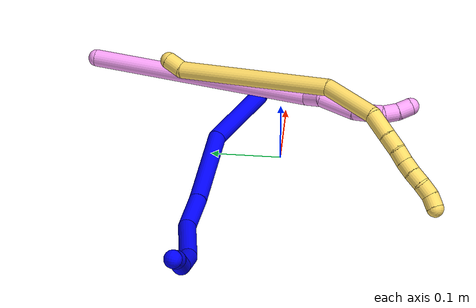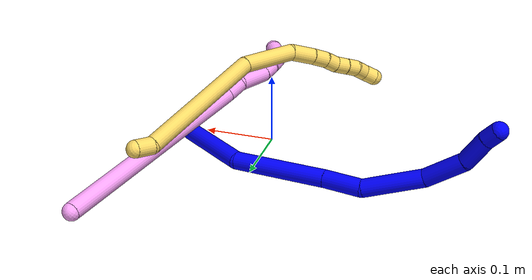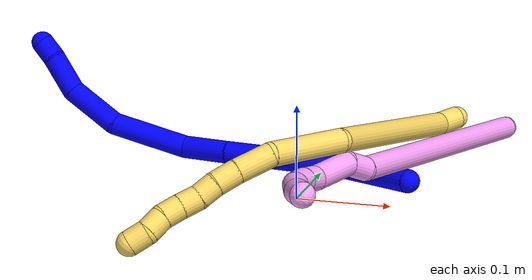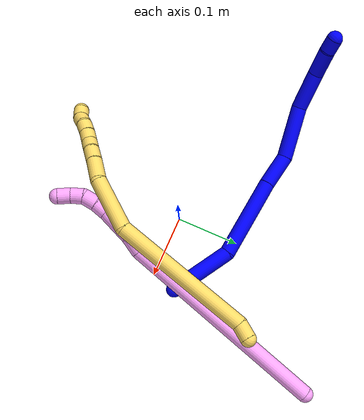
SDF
<sdf version="1.7">
 <world name="default">
  <model name="1">
   <static>0</static>
   <link name="1">
    <collision name="collision-cylinder-e_1_1_4">
     <pose>-0.049438 0.010562 0.009803 -0.82267 -1.28717 0.632482</pose>
     <geometry><cylinder><radius>0.0125</radius><length>0.102991</length></cylinder></geometry>
     <surface>
      <friction><ode><mu>1.16</mu><mu2>1.16</mu2><slip1>0</slip1><slip2>0</slip2></ode></friction>
      <contact><ode><kp>1e+06</kp><kd>1</kd><max_vel>0</max_vel><min_depth>0.001</min_depth></ode></contact>
     </surface>
    </collision>
    <visual name="visual-cylinder-e_1_1_4">
     <pose>-0.049438 0.010562 0.009803 -0.82267 -1.28717 0.632482</pose>
     <geometry><cylinder><radius>0.0125</radius><length>0.102991</length></cylinder></geometry>
     <material><ambient>0 0 1 1</ambient></material>
    </visual>
    <collision name="collision-cylinder-e_2_4_5">
     <pose>-0.16135 0.0333 0.003315 -2.49978 -1.25607 2.28299</pose>
     <geometry><cylinder><radius>0.0125</radius><length>0.131402</length></cylinder></geometry>
     <surface>
      <friction><ode><mu>1.16</mu><mu2>1.16</mu2><slip1>0</slip1><slip2>0</slip2></ode></friction>
      <contact><ode><kp>1e+06</kp><kd>1</kd><max_vel>0</max_vel><min_depth>0.001</min_depth></ode></contact>
     </surface>
    </collision>
    <visual name="visual-cylinder-e_2_4_5">
     <pose>-0.16135 0.0333 0.003315 -2.49978 -1.25607 2.28299</pose>
     <geometry><cylinder><radius>0.0125</radius><length>0.131402</length></cylinder></geometry>
     <material><ambient>0 0 1 1</ambient></material>
    </visual>
    <collision name="collision-cylinder-e_3_5_6">
     <pose>-0.250029 0.050732 -0.0179 -2.32349 -1.30257 2.10738</pose>
     <geometry><cylinder><radius>0.0125</radius><length>0.054354</length></cylinder></geometry>
     <surface>
      <friction><ode><mu>1.16</mu><mu2>1.16</mu2><slip1>0</slip1><slip2>0</slip2></ode></friction>
      <contact><ode><kp>1e+06</kp><kd>1</kd><max_vel>0</max_vel><min_depth>0.001</min_depth></ode></contact>
     </surface>
    </collision>
    <visual name="visual-cylinder-e_3_5_6">
     <pose>-0.250029 0.050732 -0.0179 -2.32349 -1.30257 2.10738</pose>
     <geometry><cylinder><radius>0.0125</radius><length>0.054354</length></cylinder></geometry>
     <material><ambient>0 0 1 1</ambient></material>
    </visual>
    <collision name="collision-cylinder-e_4_6_7">
     <pose>-0.313489 0.052282 -0.04301 2.95998 -1.06726 -2.83575</pose>
     <geometry><cylinder><radius>0.0125</radius><length>0.085068</length></cylinder></geometry>
     <surface>
      <friction><ode><mu>1.16</mu><mu2>1.16</mu2><slip1>0</slip1><slip2>0</slip2></ode></friction>
      <contact><ode><kp>1e+06</kp><kd>1</kd><max_vel>0</max_vel><min_depth>0.001</min_depth></ode></contact>
     </surface>
    </collision>
    <visual name="visual-cylinder-e_4_6_7">
     <pose>-0.313489 0.052282 -0.04301 2.95998 -1.06726 -2.83575</pose>
     <geometry><cylinder><radius>0.0125</radius><length>0.085068</length></cylinder></geometry>
     <material><ambient>0 0 1 1</ambient></material>
    </visual>
    <collision name="collision-cylinder-e_5_7_8">
     <pose>-0.377193 0.03664 -0.072095 2.2115 -1.05814 -1.72314</pose>
     <geometry><cylinder><radius>0.0125</radius><length>0.060703</length></cylinder></geometry>
     <surface>
      <friction><ode><mu>1.16</mu><mu2>1.16</mu2><slip1>0</slip1><slip2>0</slip2></ode></friction>
      <contact><ode><kp>1e+06</kp><kd>1</kd><max_vel>0</max_vel><min_depth>0.001</min_depth></ode></contact>
     </surface>
    </collision>
    <visual name="visual-cylinder-e_5_7_8">
     <pose>-0.377193 0.03664 -0.072095 2.2115 -1.05814 -1.72314</pose>
     <geometry><cylinder><radius>0.0125</radius><length>0.060703</length></cylinder></geometry>
     <material><ambient>0 0 1 1</ambient></material>
    </visual>
    <collision name="collision-cylinder-e_6_8_9">
     <pose>-0.418264 0.009176 -0.085555 1.85645 -0.734673 -0.94967</pose>
     <geometry><cylinder><radius>0.0125</radius><length>0.043624</length></cylinder></geometry>
     <surface>
      <friction><ode><mu>1.16</mu><mu2>1.16</mu2><slip1>0</slip1><slip2>0</slip2></ode></friction>
      <contact><ode><kp>1e+06</kp><kd>1</kd><max_vel>0</max_vel><min_depth>0.001</min_depth></ode></contact>
     </surface>
    </collision>
    <visual name="visual-cylinder-e_6_8_9">
     <pose>-0.418264 0.009176 -0.085555 1.85645 -0.734673 -0.94967</pose>
     <geometry><cylinder><radius>0.0125</radius><length>0.043624</length></cylinder></geometry>
     <material><ambient>0 0 1 1</ambient></material>
    </visual>
    <collision name="collision-cylinder-e_7_9_2">
     <pose>-0.441523 -0.01276 -0.092065 1.86623 -0.911343 -1.16871</pose>
     <geometry><cylinder><radius>0.0125</radius><length>0.021859</length></cylinder></geometry>
     <surface>
      <friction><ode><mu>1.16</mu><mu2>1.16</mu2><slip1>0</slip1><slip2>0</slip2></ode></friction>
      <contact><ode><kp>1e+06</kp><kd>1</kd><max_vel>0</max_vel><min_depth>0.001</min_depth></ode></contact>
     </surface>
    </collision>
    <visual name="visual-cylinder-e_7_9_2">
     <pose>-0.441523 -0.01276 -0.092065 1.86623 -0.911343 -1.16871</pose>
     <geometry><cylinder><radius>0.0125</radius><length>0.021859</length></cylinder></geometry>
     <material><ambient>0 0 1 1</ambient></material>
    </visual>
    <collision name="collision-sphere-2">
     <pose>-0.450161 -0.019166 -0.094015 0 -0 0</pose>
     <geometry><sphere><radius>0.0125</radius></sphere></geometry>
     <surface>
      <friction><ode><mu>1.16</mu><mu2>1.16</mu2><slip1>0</slip1><slip2>0</slip2></ode></friction>
      <contact><ode><kp>1e+06</kp><kd>1</kd><max_vel>0</max_vel><min_depth>0.001</min_depth></ode></contact>
     </surface>
    </collision>
    <visual name="visual-sphere-2">
     <pose>-0.450161 -0.019166 -0.094015 0 -0 0</pose>
     <geometry><sphere><radius>0.0125</radius></sphere></geometry>
     <material><ambient>0 0 1 1</ambient></material>
    </visual>
    <collision name="collision-sphere-9">
     <pose>-0.432885 -0.006354 -0.090116 0 -0 0</pose>
     <geometry><sphere><radius>0.0125</radius></sphere></geometry>
     <surface>
      <friction><ode><mu>1.16</mu><mu2>1.16</mu2><slip1>0</slip1><slip2>0</slip2></ode></friction>
      <contact><ode><kp>1e+06</kp><kd>1</kd><max_vel>0</max_vel><min_depth>0.001</min_depth></ode></contact>
     </surface>
    </collision>
    <visual name="visual-sphere-9">
     <pose>-0.432885 -0.006354 -0.090116 0 -0 0</pose>
     <geometry><sphere><radius>0.0125</radius></sphere></geometry>
     <material><ambient>0 0 1 1</ambient></material>
    </visual>
    <collision name="collision-sphere-4">
     <pose>-0.098876 0.021124 0.019606 0 -0 0</pose>
     <geometry><sphere><radius>0.0125</radius></sphere></geometry>
     <surface>
      <friction><ode><mu>1.16</mu><mu2>1.16</mu2><slip1>0</slip1><slip2>0</slip2></ode></friction>
      <contact><ode><kp>1e+06</kp><kd>1</kd><max_vel>0</max_vel><min_depth>0.001</min_depth></ode></contact>
     </surface>
    </collision>
    <visual name="visual-sphere-4">
     <pose>-0.098876 0.021124 0.019606 0 -0 0</pose>
     <geometry><sphere><radius>0.0125</radius></sphere></geometry>
     <material><ambient>0 0 1 1</ambient></material>
    </visual>
    <collision name="collision-sphere-1">
     <geometry><sphere><radius>0.0125</radius></sphere></geometry>
     <surface>
      <friction><ode><mu>1.16</mu><mu2>1.16</mu2><slip1>0</slip1><slip2>0</slip2></ode></friction>
      <contact><ode><kp>1e+06</kp><kd>1</kd><max_vel>0</max_vel><min_depth>0.001</min_depth></ode></contact>
     </surface>
    </collision>
    <visual name="visual-sphere-1">
     <geometry><sphere><radius>0.0125</radius></sphere></geometry>
     <material><ambient>0 0 1 1</ambient></material>
    </visual>
    <collision name="collision-sphere-8">
     <pose>-0.403643 0.024705 -0.080994 0 -0 0</pose>
     <geometry><sphere><radius>0.0125</radius></sphere></geometry>
     <surface>
      <friction><ode><mu>1.16</mu><mu2>1.16</mu2><slip1>0</slip1><slip2>0</slip2></ode></friction>
      <contact><ode><kp>1e+06</kp><kd>1</kd><max_vel>0</max_vel><min_depth>0.001</min_depth></ode></contact>
     </surface>
    </collision>
    <visual name="visual-sphere-8">
     <pose>-0.403643 0.024705 -0.080994 0 -0 0</pose>
     <geometry><sphere><radius>0.0125</radius></sphere></geometry>
     <material><ambient>0 0 1 1</ambient></material>
    </visual>
    <collision name="collision-sphere-5">
     <pose>-0.223824 0.045475 -0.012976 0 -0 0</pose>
     <geometry><sphere><radius>0.0125</radius></sphere></geometry>
     <surface>
      <friction><ode><mu>1.16</mu><mu2>1.16</mu2><slip1>0</slip1><slip2>0</slip2></ode></friction>
      <contact><ode><kp>1e+06</kp><kd>1</kd><max_vel>0</max_vel><min_depth>0.001</min_depth></ode></contact>
     </surface>
    </collision>
    <visual name="visual-sphere-5">
     <pose>-0.223824 0.045475 -0.012976 0 -0 0</pose>
     <geometry><sphere><radius>0.0125</radius></sphere></geometry>
     <material><ambient>0 0 1 1</ambient></material>
    </visual>
    <collision name="collision-sphere-6">
     <pose>-0.276234 0.055989 -0.022824 0 -0 0</pose>
     <geometry><sphere><radius>0.0125</radius></sphere></geometry>
     <surface>
      <friction><ode><mu>1.16</mu><mu2>1.16</mu2><slip1>0</slip1><slip2>0</slip2></ode></friction>
      <contact><ode><kp>1e+06</kp><kd>1</kd><max_vel>0</max_vel><min_depth>0.001</min_depth></ode></contact>
     </surface>
    </collision>
    <visual name="visual-sphere-6">
     <pose>-0.276234 0.055989 -0.022824 0 -0 0</pose>
     <geometry><sphere><radius>0.0125</radius></sphere></geometry>
     <material><ambient>0 0 1 1</ambient></material>
    </visual>
    <collision name="collision-sphere-7">
     <pose>-0.350744 0.048575 -0.063196 0 -0 0</pose>
     <geometry><sphere><radius>0.0125</radius></sphere></geometry>
     <surface>
      <friction><ode><mu>1.16</mu><mu2>1.16</mu2><slip1>0</slip1><slip2>0</slip2></ode></friction>
      <contact><ode><kp>1e+06</kp><kd>1</kd><max_vel>0</max_vel><min_depth>0.001</min_depth></ode></contact>
     </surface>
    </collision>
    <visual name="visual-sphere-7">
     <pose>-0.350744 0.048575 -0.063196 0 -0 0</pose>
     <geometry><sphere><radius>0.0125</radius></sphere></geometry>
     <material><ambient>0 0 1 1</ambient></material>
    </visual>
    <inertial>
     <pose>-0.234691 0.030028 -0.026615 0 -0 0</pose>
     <mass>0.5</mass>
     <inertia>
      <ixx>-3.7e-05</ixx>
      <ixy>0</ixy>
      <ixz>0</ixz>
      <iyy>0.000405</iyy>
      <iyz>0</iyz>
      <izz>0.000319</izz>
     </inertia>
    </inertial>
   </link>
   <pose>0.109525 0.040349 0.016612 -1.66535 0.176938 -0.374094</pose>
  </model>
  <model name="4">
   <static>0</static>
   <link name="4">
    <collision name="collision-cylinder-e_1_1_4">
     <pose>-0.038864 -0.127163 -0.101561 2.24472 -0.234419 -0.480037</pose>
     <geometry><cylinder><radius>0.0125</radius><length>0.334637</length></cylinder></geometry>
     <surface>
      <friction><ode><mu>1.16</mu><mu2>1.16</mu2><slip1>0</slip1><slip2>0</slip2></ode></friction>
      <contact><ode><kp>1e+06</kp><kd>1</kd><max_vel>0</max_vel><min_depth>0.001</min_depth></ode></contact>
     </surface>
    </collision>
    <visual name="visual-cylinder-e_1_1_4">
     <pose>-0.038864 -0.127163 -0.101561 2.24472 -0.234419 -0.480037</pose>
     <geometry><cylinder><radius>0.0125</radius><length>0.334637</length></cylinder></geometry>
     <material><ambient>1 0.65098 0.996078 1</ambient></material>
    </visual>
    <collision name="collision-cylinder-e_2_4_5">
     <pose>-0.085096 -0.264943 -0.208273 2.02253 -0.558133 -0.858184</pose>
     <geometry><cylinder><radius>0.0125</radius><length>0.027821</length></cylinder></geometry>
     <surface>
      <friction><ode><mu>1.16</mu><mu2>1.16</mu2><slip1>0</slip1><slip2>0</slip2></ode></friction>
      <contact><ode><kp>1e+06</kp><kd>1</kd><max_vel>0</max_vel><min_depth>0.001</min_depth></ode></contact>
     </surface>
    </collision>
    <visual name="visual-cylinder-e_2_4_5">
     <pose>-0.085096 -0.264943 -0.208273 2.02253 -0.558133 -0.858184</pose>
     <geometry><cylinder><radius>0.0125</radius><length>0.027821</length></cylinder></geometry>
     <material><ambient>1 0.65098 0.996078 1</ambient></material>
    </visual>
    <collision name="collision-cylinder-e_3_5_6">
     <pose>-0.099659 -0.291801 -0.232637 2.43981 -0.278569 -0.731526</pose>
     <geometry><cylinder><radius>0.0125</radius><length>0.052336</length></cylinder></geometry>
     <surface>
      <friction><ode><mu>1.16</mu><mu2>1.16</mu2><slip1>0</slip1><slip2>0</slip2></ode></friction>
      <contact><ode><kp>1e+06</kp><kd>1</kd><max_vel>0</max_vel><min_depth>0.001</min_depth></ode></contact>
     </surface>
    </collision>
    <visual name="visual-cylinder-e_3_5_6">
     <pose>-0.099659 -0.291801 -0.232637 2.43981 -0.278569 -0.731526</pose>
     <geometry><cylinder><radius>0.0125</radius><length>0.052336</length></cylinder></geometry>
     <material><ambient>1 0.65098 0.996078 1</ambient></material>
    </visual>
    <collision name="collision-cylinder-e_4_6_7">
     <pose>-0.109534 -0.316693 -0.257805 2.17369 -0.249861 -0.46904</pose>
     <geometry><cylinder><radius>0.0125</radius><length>0.021675</length></cylinder></geometry>
     <surface>
      <friction><ode><mu>1.16</mu><mu2>1.16</mu2><slip1>0</slip1><slip2>0</slip2></ode></friction>
      <contact><ode><kp>1e+06</kp><kd>1</kd><max_vel>0</max_vel><min_depth>0.001</min_depth></ode></contact>
     </surface>
    </collision>
    <visual name="visual-cylinder-e_4_6_7">
     <pose>-0.109534 -0.316693 -0.257805 2.17369 -0.249861 -0.46904</pose>
     <geometry><cylinder><radius>0.0125</radius><length>0.021675</length></cylinder></geometry>
     <material><ambient>1 0.65098 0.996078 1</ambient></material>
    </visual>
    <collision name="collision-cylinder-e_5_7_8">
     <pose>-0.113043 -0.334224 -0.270131 2.19305 -0.075668 -0.147203</pose>
     <geometry><cylinder><radius>0.0125</radius><length>0.021925</length></cylinder></geometry>
     <surface>
      <friction><ode><mu>1.16</mu><mu2>1.16</mu2><slip1>0</slip1><slip2>0</slip2></ode></friction>
      <contact><ode><kp>1e+06</kp><kd>1</kd><max_vel>0</max_vel><min_depth>0.001</min_depth></ode></contact>
     </surface>
    </collision>
    <visual name="visual-cylinder-e_5_7_8">
     <pose>-0.113043 -0.334224 -0.270131 2.19305 -0.075668 -0.147203</pose>
     <geometry><cylinder><radius>0.0125</radius><length>0.021925</length></cylinder></geometry>
     <material><ambient>1 0.65098 0.996078 1</ambient></material>
    </visual>
    <collision name="collision-cylinder-e_6_8_9">
     <pose>-0.110022 -0.351492 -0.281283 2.08894 0.379474 0.638489</pose>
     <geometry><cylinder><radius>0.0125</radius><length>0.020784</length></cylinder></geometry>
     <surface>
      <friction><ode><mu>1.16</mu><mu2>1.16</mu2><slip1>0</slip1><slip2>0</slip2></ode></friction>
      <contact><ode><kp>1e+06</kp><kd>1</kd><max_vel>0</max_vel><min_depth>0.001</min_depth></ode></contact>
     </surface>
    </collision>
    <visual name="visual-cylinder-e_6_8_9">
     <pose>-0.110022 -0.351492 -0.281283 2.08894 0.379474 0.638489</pose>
     <geometry><cylinder><radius>0.0125</radius><length>0.020784</length></cylinder></geometry>
     <material><ambient>1 0.65098 0.996078 1</ambient></material>
    </visual>
    <collision name="collision-cylinder-e_7_9_2">
     <pose>-0.101381 -0.368707 -0.288799 1.87122 0.478268 0.638865</pose>
     <geometry><cylinder><radius>0.0125</radius><length>0.020822</length></cylinder></geometry>
     <surface>
      <friction><ode><mu>1.16</mu><mu2>1.16</mu2><slip1>0</slip1><slip2>0</slip2></ode></friction>
      <contact><ode><kp>1e+06</kp><kd>1</kd><max_vel>0</max_vel><min_depth>0.001</min_depth></ode></contact>
     </surface>
    </collision>
    <visual name="visual-cylinder-e_7_9_2">
     <pose>-0.101381 -0.368707 -0.288799 1.87122 0.478268 0.638865</pose>
     <geometry><cylinder><radius>0.0125</radius><length>0.020822</length></cylinder></geometry>
     <material><ambient>1 0.65098 0.996078 1</ambient></material>
    </visual>
    <collision name="collision-sphere-2">
     <pose>-0.096589 -0.377536 -0.291534 0 -0 0</pose>
     <geometry><sphere><radius>0.0125</radius></sphere></geometry>
     <surface>
      <friction><ode><mu>1.16</mu><mu2>1.16</mu2><slip1>0</slip1><slip2>0</slip2></ode></friction>
      <contact><ode><kp>1e+06</kp><kd>1</kd><max_vel>0</max_vel><min_depth>0.001</min_depth></ode></contact>
     </surface>
    </collision>
    <visual name="visual-sphere-2">
     <pose>-0.096589 -0.377536 -0.291534 0 -0 0</pose>
     <geometry><sphere><radius>0.0125</radius></sphere></geometry>
     <material><ambient>1 0.65098 0.996078 1</ambient></material>
    </visual>
    <collision name="collision-sphere-9">
     <pose>-0.106172 -0.359878 -0.286064 0 -0 0</pose>
     <geometry><sphere><radius>0.0125</radius></sphere></geometry>
     <surface>
      <friction><ode><mu>1.16</mu><mu2>1.16</mu2><slip1>0</slip1><slip2>0</slip2></ode></friction>
      <contact><ode><kp>1e+06</kp><kd>1</kd><max_vel>0</max_vel><min_depth>0.001</min_depth></ode></contact>
     </surface>
    </collision>
    <visual name="visual-sphere-9">
     <pose>-0.106172 -0.359878 -0.286064 0 -0 0</pose>
     <geometry><sphere><radius>0.0125</radius></sphere></geometry>
     <material><ambient>1 0.65098 0.996078 1</ambient></material>
    </visual>
    <collision name="collision-sphere-4">
     <pose>-0.077729 -0.254326 -0.203122 0 -0 0</pose>
     <geometry><sphere><radius>0.0125</radius></sphere></geometry>
     <surface>
      <friction><ode><mu>1.16</mu><mu2>1.16</mu2><slip1>0</slip1><slip2>0</slip2></ode></friction>
      <contact><ode><kp>1e+06</kp><kd>1</kd><max_vel>0</max_vel><min_depth>0.001</min_depth></ode></contact>
     </surface>
    </collision>
    <visual name="visual-sphere-4">
     <pose>-0.077729 -0.254326 -0.203122 0 -0 0</pose>
     <geometry><sphere><radius>0.0125</radius></sphere></geometry>
     <material><ambient>1 0.65098 0.996078 1</ambient></material>
    </visual>
    <collision name="collision-sphere-1">
     <geometry><sphere><radius>0.0125</radius></sphere></geometry>
     <surface>
      <friction><ode><mu>1.16</mu><mu2>1.16</mu2><slip1>0</slip1><slip2>0</slip2></ode></friction>
      <contact><ode><kp>1e+06</kp><kd>1</kd><max_vel>0</max_vel><min_depth>0.001</min_depth></ode></contact>
     </surface>
    </collision>
    <visual name="visual-sphere-1">
     <geometry><sphere><radius>0.0125</radius></sphere></geometry>
     <material><ambient>1 0.65098 0.996078 1</ambient></material>
    </visual>
    <collision name="collision-sphere-8">
     <pose>-0.113871 -0.343106 -0.276502 0 -0 0</pose>
     <geometry><sphere><radius>0.0125</radius></sphere></geometry>
     <surface>
      <friction><ode><mu>1.16</mu><mu2>1.16</mu2><slip1>0</slip1><slip2>0</slip2></ode></friction>
      <contact><ode><kp>1e+06</kp><kd>1</kd><max_vel>0</max_vel><min_depth>0.001</min_depth></ode></contact>
     </surface>
    </collision>
    <visual name="visual-sphere-8">
     <pose>-0.113871 -0.343106 -0.276502 0 -0 0</pose>
     <geometry><sphere><radius>0.0125</radius></sphere></geometry>
     <material><ambient>1 0.65098 0.996078 1</ambient></material>
    </visual>
    <collision name="collision-sphere-5">
     <pose>-0.092463 -0.275559 -0.213423 0 -0 0</pose>
     <geometry><sphere><radius>0.0125</radius></sphere></geometry>
     <surface>
      <friction><ode><mu>1.16</mu><mu2>1.16</mu2><slip1>0</slip1><slip2>0</slip2></ode></friction>
      <contact><ode><kp>1e+06</kp><kd>1</kd><max_vel>0</max_vel><min_depth>0.001</min_depth></ode></contact>
     </surface>
    </collision>
    <visual name="visual-sphere-5">
     <pose>-0.092463 -0.275559 -0.213423 0 -0 0</pose>
     <geometry><sphere><radius>0.0125</radius></sphere></geometry>
     <material><ambient>1 0.65098 0.996078 1</ambient></material>
    </visual>
    <collision name="collision-sphere-6">
     <pose>-0.106854 -0.308043 -0.251851 0 -0 0</pose>
     <geometry><sphere><radius>0.0125</radius></sphere></geometry>
     <surface>
      <friction><ode><mu>1.16</mu><mu2>1.16</mu2><slip1>0</slip1><slip2>0</slip2></ode></friction>
      <contact><ode><kp>1e+06</kp><kd>1</kd><max_vel>0</max_vel><min_depth>0.001</min_depth></ode></contact>
     </surface>
    </collision>
    <visual name="visual-sphere-6">
     <pose>-0.106854 -0.308043 -0.251851 0 -0 0</pose>
     <geometry><sphere><radius>0.0125</radius></sphere></geometry>
     <material><ambient>1 0.65098 0.996078 1</ambient></material>
    </visual>
    <collision name="collision-sphere-7">
     <pose>-0.112214 -0.325342 -0.26376 0 -0 0</pose>
     <geometry><sphere><radius>0.0125</radius></sphere></geometry>
     <surface>
      <friction><ode><mu>1.16</mu><mu2>1.16</mu2><slip1>0</slip1><slip2>0</slip2></ode></friction>
      <contact><ode><kp>1e+06</kp><kd>1</kd><max_vel>0</max_vel><min_depth>0.001</min_depth></ode></contact>
     </surface>
    </collision>
    <visual name="visual-sphere-7">
     <pose>-0.112214 -0.325342 -0.26376 0 -0 0</pose>
     <geometry><sphere><radius>0.0125</radius></sphere></geometry>
     <material><ambient>1 0.65098 0.996078 1</ambient></material>
    </visual>
    <inertial>
     <pose>-0.059678 -0.188742 -0.150651 0 -0 0</pose>
     <mass>0.5</mass>
     <inertia>
      <ixx>0.001296</ixx>
      <ixy>0</ixy>
      <ixz>0</ixz>
      <iyy>-0.002929</iyy>
      <iyz>0</iyz>
      <izz>0.00311</izz>
     </inertia>
    </inertial>
   </link>
   <pose>0.173917 0.288306 0.016196 -0.677335 0.404573 -0.070796</pose>
  </model>
  <model name="5">
   <static>0</static>
   <link name="5">
    <collision name="collision-cylinder-e_1_1_4">
     <pose>-0.008416 -0.009524 0.003096 1.25649 -0.698874 -0.517537</pose>
     <geometry><cylinder><radius>0.0125</radius><length>0.026163</length></cylinder></geometry>
     <surface>
      <friction><ode><mu>1.16</mu><mu2>1.16</mu2><slip1>0</slip1><slip2>0</slip2></ode></friction>
      <contact><ode><kp>1e+06</kp><kd>1</kd><max_vel>0</max_vel><min_depth>0.001</min_depth></ode></contact>
     </surface>
    </collision>
    <visual name="visual-cylinder-e_1_1_4">
     <pose>-0.008416 -0.009524 0.003096 1.25649 -0.698874 -0.517537</pose>
     <geometry><cylinder><radius>0.0125</radius><length>0.026163</length></cylinder></geometry>
     <material><ambient>1 0.858824 0.4 1</ambient></material>
    </visual>
    <collision name="collision-cylinder-e_2_4_5">
     <pose>-0.048258 -0.127487 0.017082 1.47071 -0.280743 -0.254266</pose>
     <geometry><cylinder><radius>0.0125</radius><length>0.22685</length></cylinder></geometry>
     <surface>
      <friction><ode><mu>1.16</mu><mu2>1.16</mu2><slip1>0</slip1><slip2>0</slip2></ode></friction>
      <contact><ode><kp>1e+06</kp><kd>1</kd><max_vel>0</max_vel><min_depth>0.001</min_depth></ode></contact>
     </surface>
    </collision>
    <visual name="visual-cylinder-e_2_4_5">
     <pose>-0.048258 -0.127487 0.017082 1.47071 -0.280743 -0.254266</pose>
     <geometry><cylinder><radius>0.0125</radius><length>0.22685</length></cylinder></geometry>
     <material><ambient>1 0.858824 0.4 1</ambient></material>
    </visual>
    <collision name="collision-cylinder-e_3_5_6">
     <pose>-0.104012 -0.267489 0.041625 1.16251 -0.61566 -0.411824</pose>
     <geometry><cylinder><radius>0.0125</radius><length>0.084249</length></cylinder></geometry>
     <surface>
      <friction><ode><mu>1.16</mu><mu2>1.16</mu2><slip1>0</slip1><slip2>0</slip2></ode></friction>
      <contact><ode><kp>1e+06</kp><kd>1</kd><max_vel>0</max_vel><min_depth>0.001</min_depth></ode></contact>
     </surface>
    </collision>
    <visual name="visual-cylinder-e_3_5_6">
     <pose>-0.104012 -0.267489 0.041625 1.16251 -0.61566 -0.411824</pose>
     <geometry><cylinder><radius>0.0125</radius><length>0.084249</length></cylinder></geometry>
     <material><ambient>1 0.858824 0.4 1</ambient></material>
    </visual>
    <collision name="collision-cylinder-e_4_6_7">
     <pose>-0.144462 -0.307814 0.060131 1.06503 -1.01496 -0.633318</pose>
     <geometry><cylinder><radius>0.0125</radius><length>0.037961</length></cylinder></geometry>
     <surface>
      <friction><ode><mu>1.16</mu><mu2>1.16</mu2><slip1>0</slip1><slip2>0</slip2></ode></friction>
      <contact><ode><kp>1e+06</kp><kd>1</kd><max_vel>0</max_vel><min_depth>0.001</min_depth></ode></contact>
     </surface>
    </collision>
    <visual name="visual-cylinder-e_4_6_7">
     <pose>-0.144462 -0.307814 0.060131 1.06503 -1.01496 -0.633318</pose>
     <geometry><cylinder><radius>0.0125</radius><length>0.037961</length></cylinder></geometry>
     <material><ambient>1 0.858824 0.4 1</ambient></material>
    </visual>
    <collision name="collision-cylinder-e_5_7_8">
     <pose>-0.171294 -0.322213 0.067155 1.20312 -1.05707 -0.762462</pose>
     <geometry><cylinder><radius>0.0125</radius><length>0.02459</length></cylinder></geometry>
     <surface>
      <friction><ode><mu>1.16</mu><mu2>1.16</mu2><slip1>0</slip1><slip2>0</slip2></ode></friction>
      <contact><ode><kp>1e+06</kp><kd>1</kd><max_vel>0</max_vel><min_depth>0.001</min_depth></ode></contact>
     </surface>
    </collision>
    <visual name="visual-cylinder-e_5_7_8">
     <pose>-0.171294 -0.322213 0.067155 1.20312 -1.05707 -0.762462</pose>
     <geometry><cylinder><radius>0.0125</radius><length>0.02459</length></cylinder></geometry>
     <material><ambient>1 0.858824 0.4 1</ambient></material>
    </visual>
    <collision name="collision-cylinder-e_6_8_9">
     <pose>-0.191357 -0.331573 0.069995 1.39325 -1.18674 -1.02736</pose>
     <geometry><cylinder><radius>0.0125</radius><length>0.020181</length></cylinder></geometry>
     <surface>
      <friction><ode><mu>1.16</mu><mu2>1.16</mu2><slip1>0</slip1><slip2>0</slip2></ode></friction>
      <contact><ode><kp>1e+06</kp><kd>1</kd><max_vel>0</max_vel><min_depth>0.001</min_depth></ode></contact>
     </surface>
    </collision>
    <visual name="visual-cylinder-e_6_8_9">
     <pose>-0.191357 -0.331573 0.069995 1.39325 -1.18674 -1.02736</pose>
     <geometry><cylinder><radius>0.0125</radius><length>0.020181</length></cylinder></geometry>
     <material><ambient>1 0.858824 0.4 1</ambient></material>
    </visual>
    <collision name="collision-cylinder-e_7_9_10">
     <pose>-0.209195 -0.340028 0.07305 1.10366 -1.01213 -0.657594</pose>
     <geometry><cylinder><radius>0.0125</radius><length>0.020005</length></cylinder></geometry>
     <surface>
      <friction><ode><mu>1.16</mu><mu2>1.16</mu2><slip1>0</slip1><slip2>0</slip2></ode></friction>
      <contact><ode><kp>1e+06</kp><kd>1</kd><max_vel>0</max_vel><min_depth>0.001</min_depth></ode></contact>
     </surface>
    </collision>
    <visual name="visual-cylinder-e_7_9_10">
     <pose>-0.209195 -0.340028 0.07305 1.10366 -1.01213 -0.657594</pose>
     <geometry><cylinder><radius>0.0125</radius><length>0.020005</length></cylinder></geometry>
     <material><ambient>1 0.858824 0.4 1</ambient></material>
    </visual>
    <collision name="collision-cylinder-e_8_10_11">
     <pose>-0.226025 -0.350015 0.077083 1.26738 -0.987906 -0.753525</pose>
     <geometry><cylinder><radius>0.0125</radius><length>0.020001</length></cylinder></geometry>
     <surface>
      <friction><ode><mu>1.16</mu><mu2>1.16</mu2><slip1>0</slip1><slip2>0</slip2></ode></friction>
      <contact><ode><kp>1e+06</kp><kd>1</kd><max_vel>0</max_vel><min_depth>0.001</min_depth></ode></contact>
     </surface>
    </collision>
    <visual name="visual-cylinder-e_8_10_11">
     <pose>-0.226025 -0.350015 0.077083 1.26738 -0.987906 -0.753525</pose>
     <geometry><cylinder><radius>0.0125</radius><length>0.020001</length></cylinder></geometry>
     <material><ambient>1 0.858824 0.4 1</ambient></material>
    </visual>
    <collision name="collision-cylinder-e_9_11_12">
     <pose>-0.24333 -0.359652 0.077963 1.7434 -1.1096 -1.27042</pose>
     <geometry><cylinder><radius>0.0125</radius><length>0.02</length></cylinder></geometry>
     <surface>
      <friction><ode><mu>1.16</mu><mu2>1.16</mu2><slip1>0</slip1><slip2>0</slip2></ode></friction>
      <contact><ode><kp>1e+06</kp><kd>1</kd><max_vel>0</max_vel><min_depth>0.001</min_depth></ode></contact>
     </surface>
    </collision>
    <visual name="visual-cylinder-e_9_11_12">
     <pose>-0.24333 -0.359652 0.077963 1.7434 -1.1096 -1.27042</pose>
     <geometry><cylinder><radius>0.0125</radius><length>0.02</length></cylinder></geometry>
     <material><ambient>1 0.858824 0.4 1</ambient></material>
    </visual>
    <collision name="collision-cylinder-e_10_12_2">
     <pose>-0.261735 -0.366438 0.079419 0.824603 -1.23754 -0.603824</pose>
     <geometry><cylinder><radius>0.0125</radius><length>0.02</length></cylinder></geometry>
     <surface>
      <friction><ode><mu>1.16</mu><mu2>1.16</mu2><slip1>0</slip1><slip2>0</slip2></ode></friction>
      <contact><ode><kp>1e+06</kp><kd>1</kd><max_vel>0</max_vel><min_depth>0.001</min_depth></ode></contact>
     </surface>
    </collision>
    <visual name="visual-cylinder-e_10_12_2">
     <pose>-0.261735 -0.366438 0.079419 0.824603 -1.23754 -0.603824</pose>
     <geometry><cylinder><radius>0.0125</radius><length>0.02</length></cylinder></geometry>
     <material><ambient>1 0.858824 0.4 1</ambient></material>
    </visual>
    <collision name="collision-sphere-2">
     <pose>-0.271184 -0.36884 0.08164 0 -0 0</pose>
     <geometry><sphere><radius>0.0125</radius></sphere></geometry>
     <surface>
      <friction><ode><mu>1.16</mu><mu2>1.16</mu2><slip1>0</slip1><slip2>0</slip2></ode></friction>
      <contact><ode><kp>1e+06</kp><kd>1</kd><max_vel>0</max_vel><min_depth>0.001</min_depth></ode></contact>
     </surface>
    </collision>
    <visual name="visual-sphere-2">
     <pose>-0.271184 -0.36884 0.08164 0 -0 0</pose>
     <geometry><sphere><radius>0.0125</radius></sphere></geometry>
     <material><ambient>1 0.858824 0.4 1</ambient></material>
    </visual>
    <collision name="collision-sphere-12">
     <pose>-0.252285 -0.364037 0.077199 0 -0 0</pose>
     <geometry><sphere><radius>0.0125</radius></sphere></geometry>
     <surface>
      <friction><ode><mu>1.16</mu><mu2>1.16</mu2><slip1>0</slip1><slip2>0</slip2></ode></friction>
      <contact><ode><kp>1e+06</kp><kd>1</kd><max_vel>0</max_vel><min_depth>0.001</min_depth></ode></contact>
     </surface>
    </collision>
    <visual name="visual-sphere-12">
     <pose>-0.252285 -0.364037 0.077199 0 -0 0</pose>
     <geometry><sphere><radius>0.0125</radius></sphere></geometry>
     <material><ambient>1 0.858824 0.4 1</ambient></material>
    </visual>
    <collision name="collision-sphere-11">
     <pose>-0.234374 -0.355268 0.078727 0 -0 0</pose>
     <geometry><sphere><radius>0.0125</radius></sphere></geometry>
     <surface>
      <friction><ode><mu>1.16</mu><mu2>1.16</mu2><slip1>0</slip1><slip2>0</slip2></ode></friction>
      <contact><ode><kp>1e+06</kp><kd>1</kd><max_vel>0</max_vel><min_depth>0.001</min_depth></ode></contact>
     </surface>
    </collision>
    <visual name="visual-sphere-11">
     <pose>-0.234374 -0.355268 0.078727 0 -0 0</pose>
     <geometry><sphere><radius>0.0125</radius></sphere></geometry>
     <material><ambient>1 0.858824 0.4 1</ambient></material>
    </visual>
    <collision name="collision-sphere-10">
     <pose>-0.217676 -0.344762 0.075438 0 -0 0</pose>
     <geometry><sphere><radius>0.0125</radius></sphere></geometry>
     <surface>
      <friction><ode><mu>1.16</mu><mu2>1.16</mu2><slip1>0</slip1><slip2>0</slip2></ode></friction>
      <contact><ode><kp>1e+06</kp><kd>1</kd><max_vel>0</max_vel><min_depth>0.001</min_depth></ode></contact>
     </surface>
    </collision>
    <visual name="visual-sphere-10">
     <pose>-0.217676 -0.344762 0.075438 0 -0 0</pose>
     <geometry><sphere><radius>0.0125</radius></sphere></geometry>
     <material><ambient>1 0.858824 0.4 1</ambient></material>
    </visual>
    <collision name="collision-sphere-9">
     <pose>-0.200713 -0.335294 0.070663 0 -0 0</pose>
     <geometry><sphere><radius>0.0125</radius></sphere></geometry>
     <surface>
      <friction><ode><mu>1.16</mu><mu2>1.16</mu2><slip1>0</slip1><slip2>0</slip2></ode></friction>
      <contact><ode><kp>1e+06</kp><kd>1</kd><max_vel>0</max_vel><min_depth>0.001</min_depth></ode></contact>
     </surface>
    </collision>
    <visual name="visual-sphere-9">
     <pose>-0.200713 -0.335294 0.070663 0 -0 0</pose>
     <geometry><sphere><radius>0.0125</radius></sphere></geometry>
     <material><ambient>1 0.858824 0.4 1</ambient></material>
    </visual>
    <collision name="collision-sphere-4">
     <pose>-0.016832 -0.019048 0.006192 0 -0 0</pose>
     <geometry><sphere><radius>0.0125</radius></sphere></geometry>
     <surface>
      <friction><ode><mu>1.16</mu><mu2>1.16</mu2><slip1>0</slip1><slip2>0</slip2></ode></friction>
      <contact><ode><kp>1e+06</kp><kd>1</kd><max_vel>0</max_vel><min_depth>0.001</min_depth></ode></contact>
     </surface>
    </collision>
    <visual name="visual-sphere-4">
     <pose>-0.016832 -0.019048 0.006192 0 -0 0</pose>
     <geometry><sphere><radius>0.0125</radius></sphere></geometry>
     <material><ambient>1 0.858824 0.4 1</ambient></material>
    </visual>
    <collision name="collision-sphere-1">
     <geometry><sphere><radius>0.0125</radius></sphere></geometry>
     <surface>
      <friction><ode><mu>1.16</mu><mu2>1.16</mu2><slip1>0</slip1><slip2>0</slip2></ode></friction>
      <contact><ode><kp>1e+06</kp><kd>1</kd><max_vel>0</max_vel><min_depth>0.001</min_depth></ode></contact>
     </surface>
    </collision>
    <visual name="visual-sphere-1">
     <geometry><sphere><radius>0.0125</radius></sphere></geometry>
     <material><ambient>1 0.858824 0.4 1</ambient></material>
    </visual>
    <collision name="collision-sphere-8">
     <pose>-0.182002 -0.327852 0.069327 0 -0 0</pose>
     <geometry><sphere><radius>0.0125</radius></sphere></geometry>
     <surface>
      <friction><ode><mu>1.16</mu><mu2>1.16</mu2><slip1>0</slip1><slip2>0</slip2></ode></friction>
      <contact><ode><kp>1e+06</kp><kd>1</kd><max_vel>0</max_vel><min_depth>0.001</min_depth></ode></contact>
     </surface>
    </collision>
    <visual name="visual-sphere-8">
     <pose>-0.182002 -0.327852 0.069327 0 -0 0</pose>
     <geometry><sphere><radius>0.0125</radius></sphere></geometry>
     <material><ambient>1 0.858824 0.4 1</ambient></material>
    </visual>
    <collision name="collision-sphere-5">
     <pose>-0.079685 -0.235926 0.027971 0 -0 0</pose>
     <geometry><sphere><radius>0.0125</radius></sphere></geometry>
     <surface>
      <friction><ode><mu>1.16</mu><mu2>1.16</mu2><slip1>0</slip1><slip2>0</slip2></ode></friction>
      <contact><ode><kp>1e+06</kp><kd>1</kd><max_vel>0</max_vel><min_depth>0.001</min_depth></ode></contact>
     </surface>
    </collision>
    <visual name="visual-sphere-5">
     <pose>-0.079685 -0.235926 0.027971 0 -0 0</pose>
     <geometry><sphere><radius>0.0125</radius></sphere></geometry>
     <material><ambient>1 0.858824 0.4 1</ambient></material>
    </visual>
    <collision name="collision-sphere-6">
     <pose>-0.128339 -0.299052 0.055279 0 -0 0</pose>
     <geometry><sphere><radius>0.0125</radius></sphere></geometry>
     <surface>
      <friction><ode><mu>1.16</mu><mu2>1.16</mu2><slip1>0</slip1><slip2>0</slip2></ode></friction>
      <contact><ode><kp>1e+06</kp><kd>1</kd><max_vel>0</max_vel><min_depth>0.001</min_depth></ode></contact>
     </surface>
    </collision>
    <visual name="visual-sphere-6">
     <pose>-0.128339 -0.299052 0.055279 0 -0 0</pose>
     <geometry><sphere><radius>0.0125</radius></sphere></geometry>
     <material><ambient>1 0.858824 0.4 1</ambient></material>
    </visual>
    <collision name="collision-sphere-7">
     <pose>-0.160585 -0.316575 0.064984 0 -0 0</pose>
     <geometry><sphere><radius>0.0125</radius></sphere></geometry>
     <surface>
      <friction><ode><mu>1.16</mu><mu2>1.16</mu2><slip1>0</slip1><slip2>0</slip2></ode></friction>
      <contact><ode><kp>1e+06</kp><kd>1</kd><max_vel>0</max_vel><min_depth>0.001</min_depth></ode></contact>
     </surface>
    </collision>
    <visual name="visual-sphere-7">
     <pose>-0.160585 -0.316575 0.064984 0 -0 0</pose>
     <geometry><sphere><radius>0.0125</radius></sphere></geometry>
     <material><ambient>1 0.858824 0.4 1</ambient></material>
    </visual>
    <inertial>
     <pose>-0.104591 -0.21266 0.03792 0 -0 0</pose>
     <mass>0.5</mass>
     <inertia>
      <ixx>0.000678</ixx>
      <ixy>0</ixy>
      <ixz>0</ixz>
      <iyy>-8.1e-05</iyy>
      <iyz>0</iyz>
      <izz>0.001311</izz>
     </inertia>
    </inertial>
   </link>
   <pose>0.135023 0.17505 0.053459 -0.481668 -0.836542 0.365301</pose>
  </model>
 </world>
</sdf>
